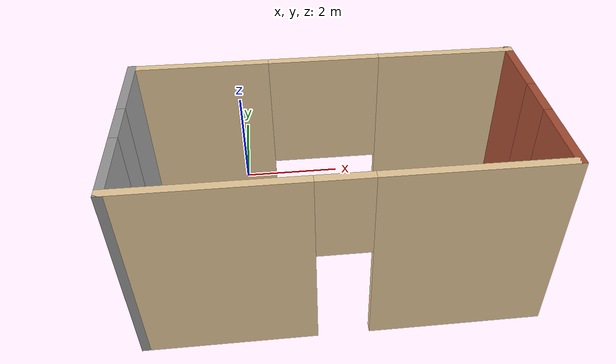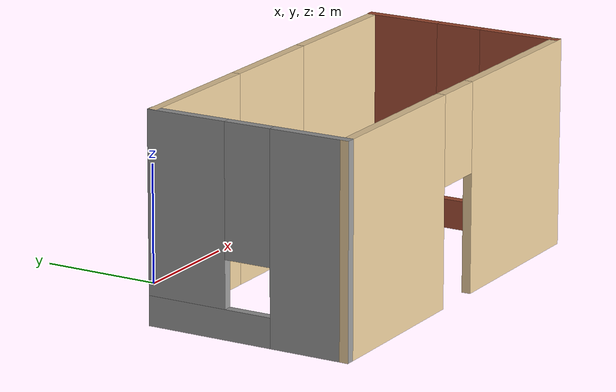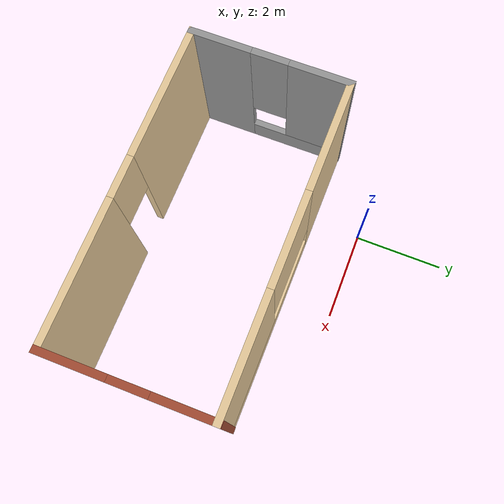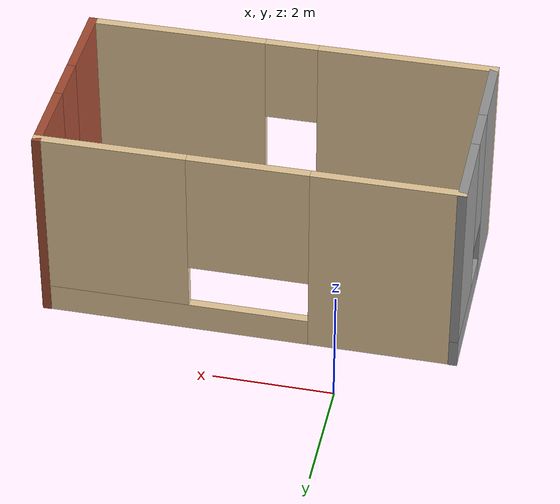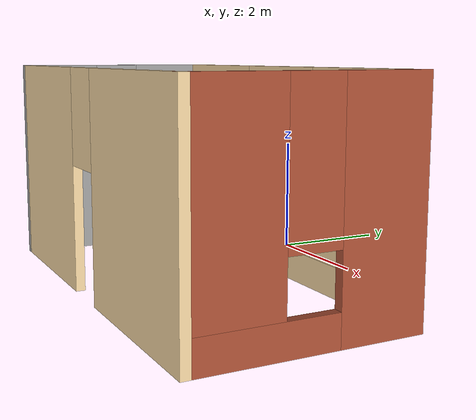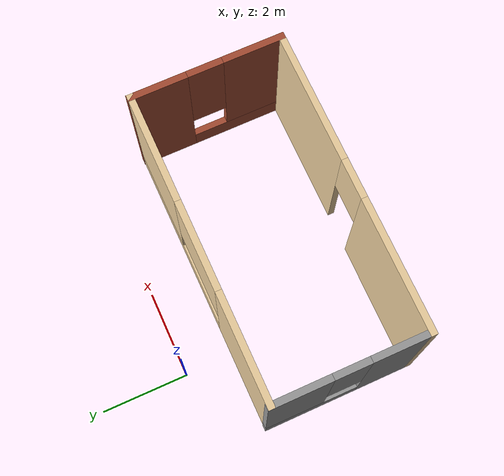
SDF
<?xml version='1.0'?>
<sdf version='1.6'>
  <model name='simple_room'>
    <pose frame=''>1.665 -2.85 0 0 -0 0</pose>
    <link name='Wall_0'>
      <pose frame=''>0 1.69 0 0 -0 0</pose>
      <visual name='Wall_0_Visual_0'>
        <pose frame=''>-2.2575 0 1.75 0 -0 0</pose>
        <geometry>
          <box>
            <size>2.485 0.15 3.5</size>
          </box>
        </geometry>
        <material>
          <script>
            <uri>file://media/materials/scripts/gazebo.material</uri>
            <name>Gazebo/Grey</name>
          </script>
          <ambient>0.921569 0.807843 0.615686 1</ambient>
        </material>
        <meta>
          <layer>0</layer>
        </meta>
      </visual>
      <collision name='Wall_0_Collision_0'>
        <geometry>
          <box>
            <size>2.485 0.15 3.5</size>
          </box>
        </geometry>
        <pose frame=''>-2.2575 0 1.75 0 -0 0</pose>
      </collision>
      <visual name='Wall_0_Visual_1'>
        <pose frame=''>1.2425 0 0.25 0 -0 0</pose>
        <geometry>
          <box>
            <size>4.515 0.15 0.5</size>
          </box>
        </geometry>
        <material>
          <script>
            <uri>file://media/materials/scripts/gazebo.material</uri>
            <name>Gazebo/Grey</name>
          </script>
          <ambient>0.921569 0.807843 0.615686 1</ambient>
        </material>
        <meta>
          <layer>0</layer>
        </meta>
      </visual>
      <collision name='Wall_0_Collision_1'>
        <geometry>
          <box>
            <size>4.515 0.15 0.5</size>
          </box>
        </geometry>
        <pose frame=''>1.2425 0 0.25 0 -0 0</pose>
      </collision>
      <visual name='Wall_0_Visual_2'>
        <pose frame=''>2.2425 0 2 0 -0 0</pose>
        <geometry>
          <box>
            <size>2.515 0.15 3</size>
          </box>
        </geometry>
        <material>
          <script>
            <uri>file://media/materials/scripts/gazebo.material</uri>
            <name>Gazebo/Grey</name>
          </script>
          <ambient>0.921569 0.807843 0.615686 1</ambient>
        </material>
        <meta>
          <layer>0</layer>
        </meta>
      </visual>
      <collision name='Wall_0_Collision_2'>
        <geometry>
          <box>
            <size>2.515 0.15 3</size>
          </box>
        </geometry>
        <pose frame=''>2.2425 0 2 0 -0 0</pose>
      </collision>
      <visual name='Wall_0_Visual_3'>
        <pose frame=''>-0.015 0 2.4 0 -0 0</pose>
        <geometry>
          <box>
            <size>2 0.15 2.2</size>
          </box>
        </geometry>
        <material>
          <script>
            <uri>file://media/materials/scripts/gazebo.material</uri>
            <name>Gazebo/Grey</name>
          </script>
          <ambient>0.921569 0.807843 0.615686 1</ambient>
        </material>
        <meta>
          <layer>0</layer>
        </meta>
      </visual>
      <collision name='Wall_0_Collision_3'>
        <geometry>
          <box>
            <size>2 0.15 2.2</size>
          </box>
        </geometry>
        <pose frame=''>-0.015 0 2.4 0 -0 0</pose>
      </collision>
    </link>
    <link name='Wall_1'>
      <pose frame=''>3.425 0 0 0 0 -1.5708</pose>
      <visual name='Wall_1_Visual_0'>
        <pose frame=''>-1.11034 0 1.75 0 -0 0</pose>
        <geometry>
          <box>
            <size>1.32933 0.15 3.5</size>
          </box>
        </geometry>
        <material>
          <script>
            <uri>file://media/materials/scripts/gazebo.material</uri>
            <name>Gazebo/Bricks</name>
          </script>
          <ambient>0.996078 0.47451 0.0196078 1</ambient>
        </material>
        <meta>
          <layer>0</layer>
        </meta>
      </visual>
      <collision name='Wall_1_Collision_0'>
        <geometry>
          <box>
            <size>1.32933 0.15 3.5</size>
          </box>
        </geometry>
        <pose frame=''>-1.11034 0 1.75 0 -0 0</pose>
      </collision>
      <visual name='Wall_1_Visual_1'>
        <pose frame=''>0.664664 0 0.25 0 -0 0</pose>
        <geometry>
          <box>
            <size>2.22067 0.15 0.5</size>
          </box>
        </geometry>
        <material>
          <script>
            <uri>file://media/materials/scripts/gazebo.material</uri>
            <name>Gazebo/Bricks</name>
          </script>
          <ambient>0.996078 0.47451 0.0196078 1</ambient>
        </material>
        <meta>
          <layer>0</layer>
        </meta>
      </visual>
      <collision name='Wall_1_Collision_1'>
        <geometry>
          <box>
            <size>2.22067 0.15 0.5</size>
          </box>
        </geometry>
        <pose frame=''>0.664664 0 0.25 0 -0 0</pose>
      </collision>
      <visual name='Wall_1_Visual_2'>
        <pose frame=''>1.06466 0 2 0 -0 0</pose>
        <geometry>
          <box>
            <size>1.42067 0.15 3</size>
          </box>
        </geometry>
        <material>
          <script>
            <uri>file://media/materials/scripts/gazebo.material</uri>
            <name>Gazebo/Bricks</name>
          </script>
          <ambient>0.996078 0.47451 0.0196078 1</ambient>
        </material>
        <meta>
          <layer>0</layer>
        </meta>
      </visual>
      <collision name='Wall_1_Collision_2'>
        <geometry>
          <box>
            <size>1.42067 0.15 3</size>
          </box>
        </geometry>
        <pose frame=''>1.06466 0 2 0 -0 0</pose>
      </collision>
      <visual name='Wall_1_Visual_3'>
        <pose frame=''>-0.045671 0 2.4 0 -0 0</pose>
        <geometry>
          <box>
            <size>0.8 0.15 2.2</size>
          </box>
        </geometry>
        <material>
          <script>
            <uri>file://media/materials/scripts/gazebo.material</uri>
            <name>Gazebo/Bricks</name>
          </script>
          <ambient>0.996078 0.47451 0.0196078 1</ambient>
        </material>
        <meta>
          <layer>0</layer>
        </meta>
      </visual>
      <collision name='Wall_1_Collision_3'>
        <geometry>
          <box>
            <size>0.8 0.15 2.2</size>
          </box>
        </geometry>
        <pose frame=''>-0.045671 0 2.4 0 -0 0</pose>
      </collision>
    </link>
    <link name='Wall_2'>
      <pose frame=''>0 -1.7 0 0 -0 3.14159</pose>
      <visual name='Wall_2_Visual_0'>
        <pose frame=''>-1.9625 0 1.75 0 -0 0</pose>
        <geometry>
          <box>
            <size>3.075 0.15 3.5</size>
          </box>
        </geometry>
        <material>
          <script>
            <uri>file://media/materials/scripts/gazebo.material</uri>
            <name>Gazebo/Grey</name>
          </script>
          <ambient>0.921569 0.807843 0.615686 1</ambient>
        </material>
        <meta>
          <layer>0</layer>
        </meta>
      </visual>
      <collision name='Wall_2_Collision_0'>
        <geometry>
          <box>
            <size>3.075 0.15 3.5</size>
          </box>
        </geometry>
        <pose frame=''>-1.9625 0 1.75 0 -0 0</pose>
      </collision>
      <visual name='Wall_2_Visual_1'>
        <pose frame=''>1.9875 0 1.75 0 -0 0</pose>
        <geometry>
          <box>
            <size>3.025 0.15 3.5</size>
          </box>
        </geometry>
        <material>
          <script>
            <uri>file://media/materials/scripts/gazebo.material</uri>
            <name>Gazebo/Grey</name>
          </script>
          <ambient>0.921569 0.807843 0.615686 1</ambient>
        </material>
        <meta>
          <layer>0</layer>
        </meta>
      </visual>
      <collision name='Wall_2_Collision_1'>
        <geometry>
          <box>
            <size>3.025 0.15 3.5</size>
          </box>
        </geometry>
        <pose frame=''>1.9875 0 1.75 0 -0 0</pose>
      </collision>
      <visual name='Wall_2_Visual_2'>
        <pose frame=''>0.025 0 2.75 0 -0 0</pose>
        <geometry>
          <box>
            <size>0.9 0.15 1.5</size>
          </box>
        </geometry>
        <material>
          <script>
            <uri>file://media/materials/scripts/gazebo.material</uri>
            <name>Gazebo/Grey</name>
          </script>
          <ambient>0.921569 0.807843 0.615686 1</ambient>
        </material>
        <meta>
          <layer>0</layer>
        </meta>
      </visual>
      <collision name='Wall_2_Collision_2'>
        <geometry>
          <box>
            <size>0.9 0.15 1.5</size>
          </box>
        </geometry>
        <pose frame=''>0.025 0 2.75 0 -0 0</pose>
      </collision>
    </link>
    <link name='Wall_3'>
      <pose frame=''>-3.425 0 0 0 -0 1.5708</pose>
      <visual name='Wall_3_Visual_0'>
        <pose frame=''>-1.09004 0 1.75 0 -0 0</pose>
        <geometry>
          <box>
            <size>1.36993 0.15 3.5</size>
          </box>
        </geometry>
        <material>
          <script>
            <uri>file://media/materials/scripts/gazebo.material</uri>
            <name>Gazebo/Grey</name>
          </script>
          <ambient>1 1 1 1</ambient>
        </material>
        <meta>
          <layer>0</layer>
        </meta>
      </visual>
      <collision name='Wall_3_Collision_0'>
        <geometry>
          <box>
            <size>1.36993 0.15 3.5</size>
          </box>
        </geometry>
        <pose frame=''>-1.09004 0 1.75 0 -0 0</pose>
      </collision>
      <visual name='Wall_3_Visual_1'>
        <pose frame=''>0.684963 0 0.25 0 -0 0</pose>
        <geometry>
          <box>
            <size>2.18007 0.15 0.5</size>
          </box>
        </geometry>
        <material>
          <script>
            <uri>file://media/materials/scripts/gazebo.material</uri>
            <name>Gazebo/Grey</name>
          </script>
          <ambient>1 1 1 1</ambient>
        </material>
        <meta>
          <layer>0</layer>
        </meta>
      </visual>
      <collision name='Wall_3_Collision_1'>
        <geometry>
          <box>
            <size>2.18007 0.15 0.5</size>
          </box>
        </geometry>
        <pose frame=''>0.684963 0 0.25 0 -0 0</pose>
      </collision>
      <visual name='Wall_3_Visual_2'>
        <pose frame=''>1.08496 0 2 0 -0 0</pose>
        <geometry>
          <box>
            <size>1.38007 0.15 3</size>
          </box>
        </geometry>
        <material>
          <script>
            <uri>file://media/materials/scripts/gazebo.material</uri>
            <name>Gazebo/Grey</name>
          </script>
          <ambient>1 1 1 1</ambient>
        </material>
        <meta>
          <layer>0</layer>
        </meta>
      </visual>
      <collision name='Wall_3_Collision_2'>
        <geometry>
          <box>
            <size>1.38007 0.15 3</size>
          </box>
        </geometry>
        <pose frame=''>1.08496 0 2 0 -0 0</pose>
      </collision>
      <visual name='Wall_3_Visual_3'>
        <pose frame=''>-0.005075 0 2.4 0 -0 0</pose>
        <geometry>
          <box>
            <size>0.8 0.15 2.2</size>
          </box>
        </geometry>
        <material>
          <script>
            <uri>file://media/materials/scripts/gazebo.material</uri>
            <name>Gazebo/Grey</name>
          </script>
          <ambient>1 1 1 1</ambient>
        </material>
        <meta>
          <layer>0</layer>
        </meta>
      </visual>
      <collision name='Wall_3_Collision_3'>
        <geometry>
          <box>
            <size>0.8 0.15 2.2</size>
          </box>
        </geometry>
        <pose frame=''>-0.005075 0 2.4 0 -0 0</pose>
      </collision>
    </link>
    <static>1</static>
  </model>
</sdf>
